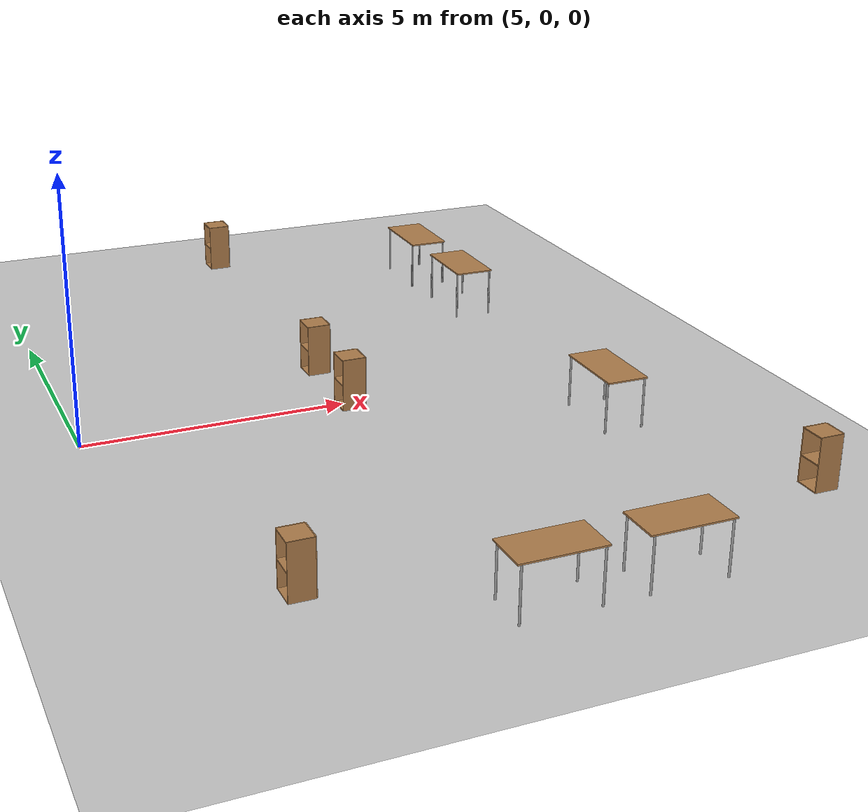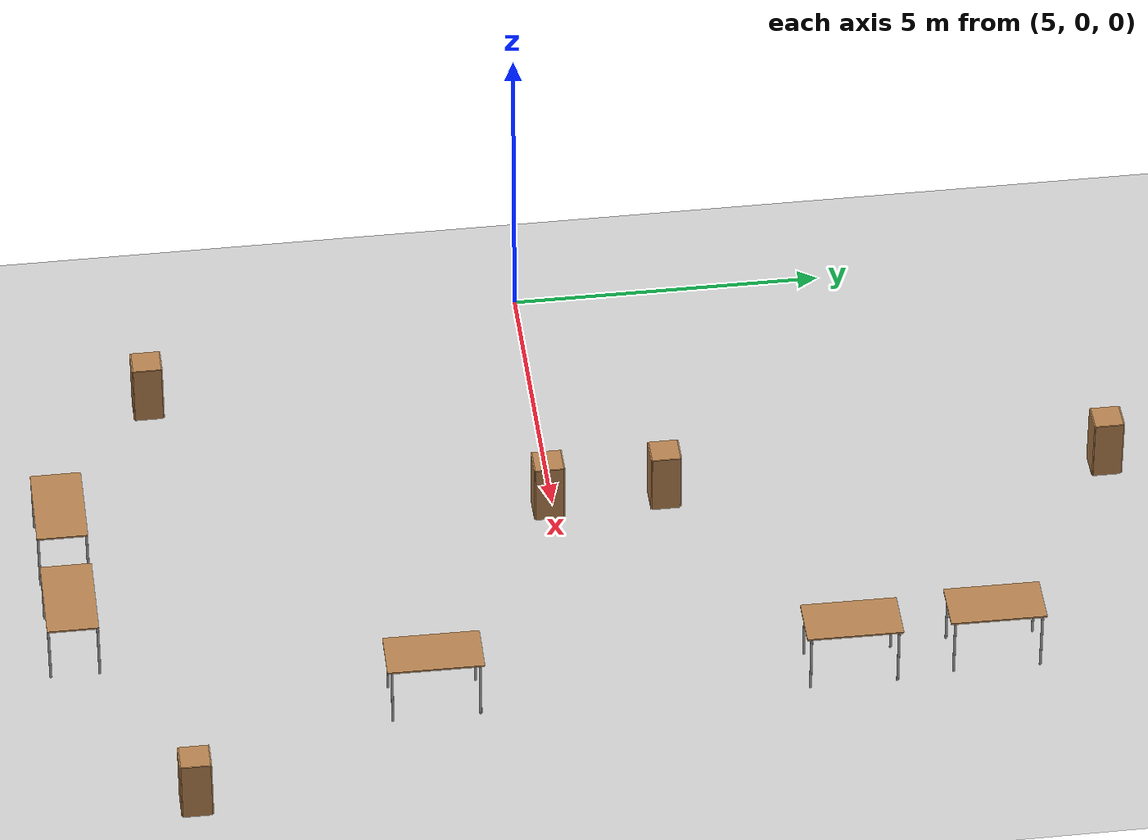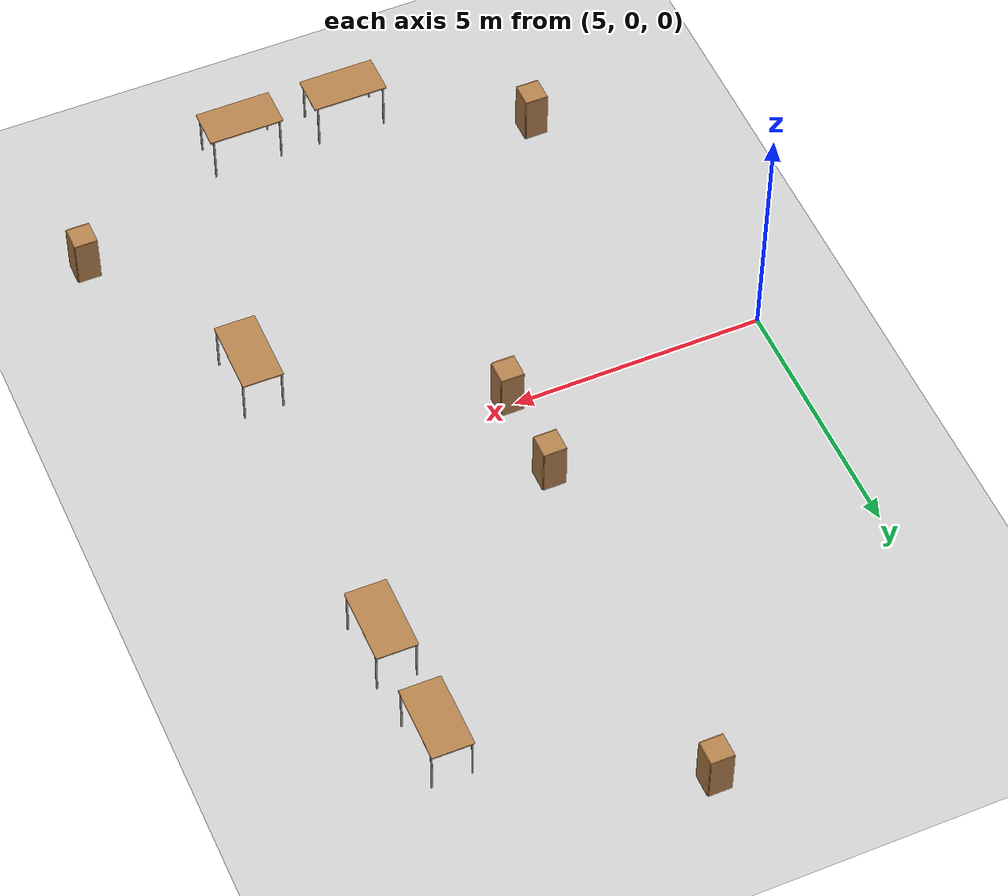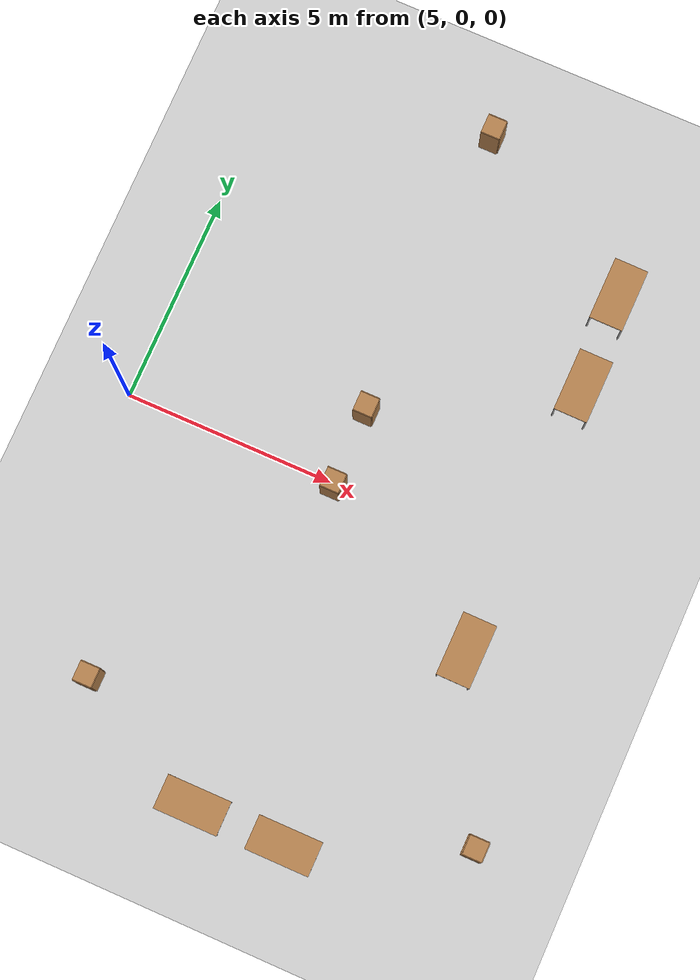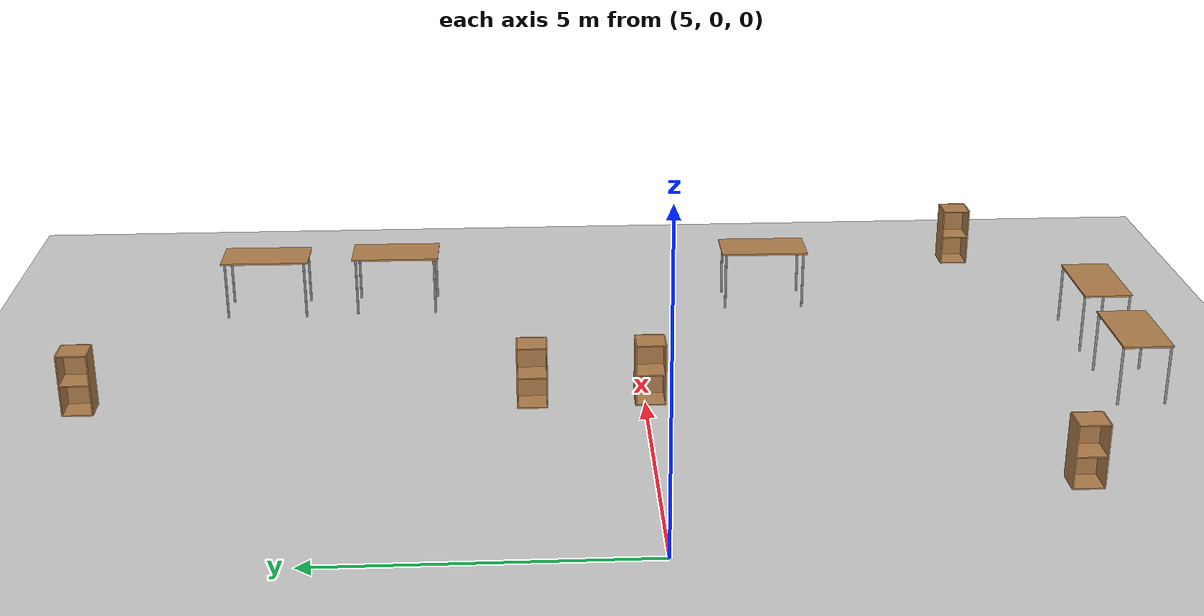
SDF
<sdf version="1.7">
 <world name="default">
  <model name="ground_plane">
   <static>1</static>
   <link name="link">
    <collision name="collision">
     <geometry><plane><normal>0 0 1</normal><size>100 100</size></plane></geometry>
     <surface><friction><ode><mu>100</mu><mu2>50</mu2></ode></friction></surface>
    </collision>
    <visual name="visual">
     <cast_shadows>0</cast_shadows>
     <geometry><plane><normal>0 0 1</normal><size>100 100</size></plane></geometry>
     <material>
      <script><uri>file://media/materials/scripts/gazebo.material</uri><name>Gazebo/Grey</name></script>
     </material>
    </visual>
   </link>
  </model>
  <model name="cabinet_4">
   <static>1</static>
   <link name="cabinet_bottom_plate">
    <inertial>
     <pose>0 0 -1 0 -0 0</pose>
     <inertia><ixx>2.05</ixx><ixy>0</ixy><ixz>0</ixz><iyy>2.05</iyy><iyz>0</iyz><izz>2.05</izz></inertia>
     <mass>25</mass>
    </inertial>
    <collision name="cabinet_bottom_plate_geom">
     <pose>0 0 0.01 0 -0 0</pose>
     <geometry><box><size>0.45 0.45 0.02</size></box></geometry>
    </collision>
    <visual name="cabinet_bottom_plate_geom_visual">
     <pose>0 0 0.01 0 -0 0</pose>
     <geometry><box><size>0.45 0.45 0.02</size></box></geometry>
     <material>
      <script><uri>file://media/materials/scripts/gazebo.material</uri><name>Gazebo/Wood</name></script>
     </material>
    </visual>
    <collision name="cabinet_bottom_plate_geom_cabinet_back_plate">
     <pose>0.235 0 0.51 0 -0 0</pose>
     <geometry><box><size>0.02 0.45 1.02</size></box></geometry>
    </collision>
    <visual name="cabinet_bottom_plate_geom_cabinet_back_plate_visual">
     <pose>0.235 0 0.51 0 -0 0</pose>
     <geometry><box><size>0.02 0.45 1.02</size></box></geometry>
     <material>
      <script><uri>file://media/materials/scripts/gazebo.material</uri><name>Gazebo/Wood</name></script>
     </material>
    </visual>
    <collision name="cabinet_bottom_plate_geom_cabinet_left_plate">
     <pose>0 0.235 0.51 0 -0 0</pose>
     <geometry><box><size>0.45 0.02 1.02</size></box></geometry>
    </collision>
    <visual name="cabinet_bottom_plate_geom_cabinet_left_plate_visual">
     <pose>0 0.235 0.51 0 -0 0</pose>
     <geometry><box><size>0.45 0.02 1.02</size></box></geometry>
     <material>
      <script><uri>file://media/materials/scripts/gazebo.material</uri><name>Gazebo/Wood</name></script>
     </material>
    </visual>
    <collision name="cabinet_bottom_plate_geom_cabinet_middle_plate">
     <pose>0 0 0.51 0 -0 0</pose>
     <geometry><box><size>0.45 0.45 0.02</size></box></geometry>
    </collision>
    <visual name="cabinet_bottom_plate_geom_cabinet_middle_plate_visual">
     <pose>0 0 0.51 0 -0 0</pose>
     <geometry><box><size>0.45 0.45 0.02</size></box></geometry>
     <material>
      <script><uri>file://media/materials/scripts/gazebo.material</uri><name>Gazebo/Wood</name></script>
     </material>
    </visual>
    <collision name="cabinet_bottom_plate_geom_cabinet_right_plate">
     <pose>0 -0.235 0.51 0 -0 0</pose>
     <geometry><box><size>0.45 0.02 1.02</size></box></geometry>
    </collision>
    <visual name="cabinet_bottom_plate_geom_cabinet_right_plate_visual">
     <pose>0 -0.235 0.51 0 -0 0</pose>
     <geometry><box><size>0.45 0.02 1.02</size></box></geometry>
     <material>
      <script><uri>file://media/materials/scripts/gazebo.material</uri><name>Gazebo/Wood</name></script>
     </material>
    </visual>
    <collision name="cabinet_bottom_plate_geom_cabinet_top_plate">
     <pose>0 0 1.01 0 -0 0</pose>
     <geometry><box><size>0.45 0.45 0.02</size></box></geometry>
    </collision>
    <visual name="cabinet_bottom_plate_geom_cabinet_top_plate_visual">
     <pose>0 0 1.01 0 -0 0</pose>
     <geometry><box><size>0.45 0.45 0.02</size></box></geometry>
     <material>
      <script><uri>file://media/materials/scripts/gazebo.material</uri><name>Gazebo/Wood</name></script>
     </material>
    </visual>
   </link>
   <pose>10.1725 8.85996 0 0 -0 0</pose>
  </model>
  <model name="cabinet_5">
   <static>1</static>
   <link name="cabinet_bottom_plate">
    <inertial>
     <pose>0 0 -1 0 -0 0</pose>
     <inertia><ixx>2.05</ixx><ixy>0</ixy><ixz>0</ixz><iyy>2.05</iyy><iyz>0</iyz><izz>2.05</izz></inertia>
     <mass>25</mass>
    </inertial>
    <collision name="cabinet_bottom_plate_geom">
     <pose>0 0 0.01 0 -0 0</pose>
     <geometry><box><size>0.45 0.45 0.02</size></box></geometry>
    </collision>
    <visual name="cabinet_bottom_plate_geom_visual">
     <pose>0 0 0.01 0 -0 0</pose>
     <geometry><box><size>0.45 0.45 0.02</size></box></geometry>
     <material>
      <script><uri>file://media/materials/scripts/gazebo.material</uri><name>Gazebo/Wood</name></script>
     </material>
    </visual>
    <collision name="cabinet_bottom_plate_geom_cabinet_back_plate">
     <pose>0.235 0 0.51 0 -0 0</pose>
     <geometry><box><size>0.02 0.45 1.02</size></box></geometry>
    </collision>
    <visual name="cabinet_bottom_plate_geom_cabinet_back_plate_visual">
     <pose>0.235 0 0.51 0 -0 0</pose>
     <geometry><box><size>0.02 0.45 1.02</size></box></geometry>
     <material>
      <script><uri>file://media/materials/scripts/gazebo.material</uri><name>Gazebo/Wood</name></script>
     </material>
    </visual>
    <collision name="cabinet_bottom_plate_geom_cabinet_left_plate">
     <pose>0 0.235 0.51 0 -0 0</pose>
     <geometry><box><size>0.45 0.02 1.02</size></box></geometry>
    </collision>
    <visual name="cabinet_bottom_plate_geom_cabinet_left_plate_visual">
     <pose>0 0.235 0.51 0 -0 0</pose>
     <geometry><box><size>0.45 0.02 1.02</size></box></geometry>
     <material>
      <script><uri>file://media/materials/scripts/gazebo.material</uri><name>Gazebo/Wood</name></script>
     </material>
    </visual>
    <collision name="cabinet_bottom_plate_geom_cabinet_middle_plate">
     <pose>0 0 0.51 0 -0 0</pose>
     <geometry><box><size>0.45 0.45 0.02</size></box></geometry>
    </collision>
    <visual name="cabinet_bottom_plate_geom_cabinet_middle_plate_visual">
     <pose>0 0 0.51 0 -0 0</pose>
     <geometry><box><size>0.45 0.45 0.02</size></box></geometry>
     <material>
      <script><uri>file://media/materials/scripts/gazebo.material</uri><name>Gazebo/Wood</name></script>
     </material>
    </visual>
    <collision name="cabinet_bottom_plate_geom_cabinet_right_plate">
     <pose>0 -0.235 0.51 0 -0 0</pose>
     <geometry><box><size>0.45 0.02 1.02</size></box></geometry>
    </collision>
    <visual name="cabinet_bottom_plate_geom_cabinet_right_plate_visual">
     <pose>0 -0.235 0.51 0 -0 0</pose>
     <geometry><box><size>0.45 0.02 1.02</size></box></geometry>
     <material>
      <script><uri>file://media/materials/scripts/gazebo.material</uri><name>Gazebo/Wood</name></script>
     </material>
    </visual>
    <collision name="cabinet_bottom_plate_geom_cabinet_top_plate">
     <pose>0 0 1.01 0 -0 0</pose>
     <geometry><box><size>0.45 0.45 0.02</size></box></geometry>
    </collision>
    <visual name="cabinet_bottom_plate_geom_cabinet_top_plate_visual">
     <pose>0 0 1.01 0 -0 0</pose>
     <geometry><box><size>0.45 0.45 0.02</size></box></geometry>
     <material>
      <script><uri>file://media/materials/scripts/gazebo.material</uri><name>Gazebo/Wood</name></script>
     </material>
    </visual>
   </link>
   <pose>10.0989 1.77913 0 0 -0 0</pose>
  </model>
  <model name="cabinet_6">
   <static>1</static>
   <link name="cabinet_bottom_plate">
    <inertial>
     <pose>0 0 -1 0 -0 0</pose>
     <inertia><ixx>2.05</ixx><ixy>0</ixy><ixz>0</ixz><iyy>2.05</iyy><iyz>0</iyz><izz>2.05</izz></inertia>
     <mass>25</mass>
    </inertial>
    <collision name="cabinet_bottom_plate_geom">
     <pose>0 0 0.01 0 -0 0</pose>
     <geometry><box><size>0.45 0.45 0.02</size></box></geometry>
    </collision>
    <visual name="cabinet_bottom_plate_geom_visual">
     <pose>0 0 0.01 0 -0 0</pose>
     <geometry><box><size>0.45 0.45 0.02</size></box></geometry>
     <material>
      <script><uri>file://media/materials/scripts/gazebo.material</uri><name>Gazebo/Wood</name></script>
     </material>
    </visual>
    <collision name="cabinet_bottom_plate_geom_cabinet_back_plate">
     <pose>0.235 0 0.51 0 -0 0</pose>
     <geometry><box><size>0.02 0.45 1.02</size></box></geometry>
    </collision>
    <visual name="cabinet_bottom_plate_geom_cabinet_back_plate_visual">
     <pose>0.235 0 0.51 0 -0 0</pose>
     <geometry><box><size>0.02 0.45 1.02</size></box></geometry>
     <material>
      <script><uri>file://media/materials/scripts/gazebo.material</uri><name>Gazebo/Wood</name></script>
     </material>
    </visual>
    <collision name="cabinet_bottom_plate_geom_cabinet_left_plate">
     <pose>0 0.235 0.51 0 -0 0</pose>
     <geometry><box><size>0.45 0.02 1.02</size></box></geometry>
    </collision>
    <visual name="cabinet_bottom_plate_geom_cabinet_left_plate_visual">
     <pose>0 0.235 0.51 0 -0 0</pose>
     <geometry><box><size>0.45 0.02 1.02</size></box></geometry>
     <material>
      <script><uri>file://media/materials/scripts/gazebo.material</uri><name>Gazebo/Wood</name></script>
     </material>
    </visual>
    <collision name="cabinet_bottom_plate_geom_cabinet_middle_plate">
     <pose>0 0 0.51 0 -0 0</pose>
     <geometry><box><size>0.45 0.45 0.02</size></box></geometry>
    </collision>
    <visual name="cabinet_bottom_plate_geom_cabinet_middle_plate_visual">
     <pose>0 0 0.51 0 -0 0</pose>
     <geometry><box><size>0.45 0.45 0.02</size></box></geometry>
     <material>
      <script><uri>file://media/materials/scripts/gazebo.material</uri><name>Gazebo/Wood</name></script>
     </material>
    </visual>
    <collision name="cabinet_bottom_plate_geom_cabinet_right_plate">
     <pose>0 -0.235 0.51 0 -0 0</pose>
     <geometry><box><size>0.45 0.02 1.02</size></box></geometry>
    </collision>
    <visual name="cabinet_bottom_plate_geom_cabinet_right_plate_visual">
     <pose>0 -0.235 0.51 0 -0 0</pose>
     <geometry><box><size>0.45 0.02 1.02</size></box></geometry>
     <material>
      <script><uri>file://media/materials/scripts/gazebo.material</uri><name>Gazebo/Wood</name></script>
     </material>
    </visual>
    <collision name="cabinet_bottom_plate_geom_cabinet_top_plate">
     <pose>0 0 1.01 0 -0 0</pose>
     <geometry><box><size>0.45 0.45 0.02</size></box></geometry>
    </collision>
    <visual name="cabinet_bottom_plate_geom_cabinet_top_plate_visual">
     <pose>0 0 1.01 0 -0 0</pose>
     <geometry><box><size>0.45 0.45 0.02</size></box></geometry>
     <material>
      <script><uri>file://media/materials/scripts/gazebo.material</uri><name>Gazebo/Wood</name></script>
     </material>
    </visual>
   </link>
   <pose>10.1148 -0.083487 0 0 -0 0</pose>
  </model>
  <model name="cabinet_7">
   <static>1</static>
   <link name="cabinet_bottom_plate">
    <inertial>
     <pose>0 0 -1 0 -0 0</pose>
     <inertia><ixx>2.05</ixx><ixy>0</ixy><ixz>0</ixz><iyy>2.05</iyy><iyz>0</iyz><izz>2.05</izz></inertia>
     <mass>25</mass>
    </inertial>
    <collision name="cabinet_bottom_plate_geom">
     <pose>0 0 0.01 0 -0 0</pose>
     <geometry><box><size>0.45 0.45 0.02</size></box></geometry>
    </collision>
    <visual name="cabinet_bottom_plate_geom_visual">
     <pose>0 0 0.01 0 -0 0</pose>
     <geometry><box><size>0.45 0.45 0.02</size></box></geometry>
     <material>
      <script><uri>file://media/materials/scripts/gazebo.material</uri><name>Gazebo/Wood</name></script>
     </material>
    </visual>
    <collision name="cabinet_bottom_plate_geom_cabinet_back_plate">
     <pose>0.235 0 0.51 0 -0 0</pose>
     <geometry><box><size>0.02 0.45 1.02</size></box></geometry>
    </collision>
    <visual name="cabinet_bottom_plate_geom_cabinet_back_plate_visual">
     <pose>0.235 0 0.51 0 -0 0</pose>
     <geometry><box><size>0.02 0.45 1.02</size></box></geometry>
     <material>
      <script><uri>file://media/materials/scripts/gazebo.material</uri><name>Gazebo/Wood</name></script>
     </material>
    </visual>
    <collision name="cabinet_bottom_plate_geom_cabinet_left_plate">
     <pose>0 0.235 0.51 0 -0 0</pose>
     <geometry><box><size>0.45 0.02 1.02</size></box></geometry>
    </collision>
    <visual name="cabinet_bottom_plate_geom_cabinet_left_plate_visual">
     <pose>0 0.235 0.51 0 -0 0</pose>
     <geometry><box><size>0.45 0.02 1.02</size></box></geometry>
     <material>
      <script><uri>file://media/materials/scripts/gazebo.material</uri><name>Gazebo/Wood</name></script>
     </material>
    </visual>
    <collision name="cabinet_bottom_plate_geom_cabinet_middle_plate">
     <pose>0 0 0.51 0 -0 0</pose>
     <geometry><box><size>0.45 0.45 0.02</size></box></geometry>
    </collision>
    <visual name="cabinet_bottom_plate_geom_cabinet_middle_plate_visual">
     <pose>0 0 0.51 0 -0 0</pose>
     <geometry><box><size>0.45 0.45 0.02</size></box></geometry>
     <material>
      <script><uri>file://media/materials/scripts/gazebo.material</uri><name>Gazebo/Wood</name></script>
     </material>
    </visual>
    <collision name="cabinet_bottom_plate_geom_cabinet_right_plate">
     <pose>0 -0.235 0.51 0 -0 0</pose>
     <geometry><box><size>0.45 0.02 1.02</size></box></geometry>
    </collision>
    <visual name="cabinet_bottom_plate_geom_cabinet_right_plate_visual">
     <pose>0 -0.235 0.51 0 -0 0</pose>
     <geometry><box><size>0.45 0.02 1.02</size></box></geometry>
     <material>
      <script><uri>file://media/materials/scripts/gazebo.material</uri><name>Gazebo/Wood</name></script>
     </material>
    </visual>
    <collision name="cabinet_bottom_plate_geom_cabinet_top_plate">
     <pose>0 0 1.01 0 -0 0</pose>
     <geometry><box><size>0.45 0.45 0.02</size></box></geometry>
    </collision>
    <visual name="cabinet_bottom_plate_geom_cabinet_top_plate_visual">
     <pose>0 0 1.01 0 -0 0</pose>
     <geometry><box><size>0.45 0.45 0.02</size></box></geometry>
     <material>
      <script><uri>file://media/materials/scripts/gazebo.material</uri><name>Gazebo/Wood</name></script>
     </material>
    </visual>
   </link>
   <pose>6.91626 -6.17516 0 0 -0 0</pose>
  </model>
  <model name="cabinet_8">
   <static>1</static>
   <link name="cabinet_bottom_plate">
    <inertial>
     <pose>0 0 -1 0 -0 0</pose>
     <inertia><ixx>2.05</ixx><ixy>0</ixy><ixz>0</ixz><iyy>2.05</iyy><iyz>0</iyz><izz>2.05</izz></inertia>
     <mass>25</mass>
    </inertial>
    <collision name="cabinet_bottom_plate_geom">
     <pose>0 0 0.01 0 -0 0</pose>
     <geometry><box><size>0.45 0.45 0.02</size></box></geometry>
    </collision>
    <visual name="cabinet_bottom_plate_geom_visual">
     <pose>0 0 0.01 0 -0 0</pose>
     <geometry><box><size>0.45 0.45 0.02</size></box></geometry>
     <material>
      <script><uri>file://media/materials/scripts/gazebo.material</uri><name>Gazebo/Wood</name></script>
     </material>
    </visual>
    <collision name="cabinet_bottom_plate_geom_cabinet_back_plate">
     <pose>0.235 0 0.51 0 -0 0</pose>
     <geometry><box><size>0.02 0.45 1.02</size></box></geometry>
    </collision>
    <visual name="cabinet_bottom_plate_geom_cabinet_back_plate_visual">
     <pose>0.235 0 0.51 0 -0 0</pose>
     <geometry><box><size>0.02 0.45 1.02</size></box></geometry>
     <material>
      <script><uri>file://media/materials/scripts/gazebo.material</uri><name>Gazebo/Wood</name></script>
     </material>
    </visual>
    <collision name="cabinet_bottom_plate_geom_cabinet_left_plate">
     <pose>0 0.235 0.51 0 -0 0</pose>
     <geometry><box><size>0.45 0.02 1.02</size></box></geometry>
    </collision>
    <visual name="cabinet_bottom_plate_geom_cabinet_left_plate_visual">
     <pose>0 0.235 0.51 0 -0 0</pose>
     <geometry><box><size>0.45 0.02 1.02</size></box></geometry>
     <material>
      <script><uri>file://media/materials/scripts/gazebo.material</uri><name>Gazebo/Wood</name></script>
     </material>
    </visual>
    <collision name="cabinet_bottom_plate_geom_cabinet_middle_plate">
     <pose>0 0 0.51 0 -0 0</pose>
     <geometry><box><size>0.45 0.45 0.02</size></box></geometry>
    </collision>
    <visual name="cabinet_bottom_plate_geom_cabinet_middle_plate_visual">
     <pose>0 0 0.51 0 -0 0</pose>
     <geometry><box><size>0.45 0.45 0.02</size></box></geometry>
     <material>
      <script><uri>file://media/materials/scripts/gazebo.material</uri><name>Gazebo/Wood</name></script>
     </material>
    </visual>
    <collision name="cabinet_bottom_plate_geom_cabinet_right_plate">
     <pose>0 -0.235 0.51 0 -0 0</pose>
     <geometry><box><size>0.45 0.02 1.02</size></box></geometry>
    </collision>
    <visual name="cabinet_bottom_plate_geom_cabinet_right_plate_visual">
     <pose>0 -0.235 0.51 0 -0 0</pose>
     <geometry><box><size>0.45 0.02 1.02</size></box></geometry>
     <material>
      <script><uri>file://media/materials/scripts/gazebo.material</uri><name>Gazebo/Wood</name></script>
     </material>
    </visual>
    <collision name="cabinet_bottom_plate_geom_cabinet_top_plate">
     <pose>0 0 1.01 0 -0 0</pose>
     <geometry><box><size>0.45 0.45 0.02</size></box></geometry>
    </collision>
    <visual name="cabinet_bottom_plate_geom_cabinet_top_plate_visual">
     <pose>0 0 1.01 0 -0 0</pose>
     <geometry><box><size>0.45 0.45 0.02</size></box></geometry>
     <material>
      <script><uri>file://media/materials/scripts/gazebo.material</uri><name>Gazebo/Wood</name></script>
     </material>
    </visual>
   </link>
   <pose>16.1819 -6.20619 0 0 -0 0</pose>
  </model>
  <model name="table_1_clone_1">
   <static>1</static>
   <link name="link">
    <collision name="surface">
     <pose>0 0 1 0 -0 0</pose>
     <geometry><box><size>1.5 0.8 0.03</size></box></geometry>
     <surface><friction><ode><mu>0.6</mu><mu2>0.6</mu2></ode></friction></surface>
    </collision>
    <visual name="visual1">
     <pose>0 0 1 0 -0 0</pose>
     <geometry><box><size>1.5 0.8 0.03</size></box></geometry>
     <material>
      <script><uri>file://media/materials/scripts/gazebo.material</uri><name>Gazebo/Wood</name></script>
     </material>
    </visual>
    <collision name="front_left_leg">
     <pose>0.68 0.38 0.5 0 -0 0</pose>
     <geometry><cylinder><radius>0.02</radius><length>1</length></cylinder></geometry>
    </collision>
    <visual name="front_left_leg">
     <pose>0.68 0.38 0.5 0 -0 0</pose>
     <geometry><cylinder><radius>0.02</radius><length>1</length></cylinder></geometry>
     <material>
      <script><uri>file://media/materials/scripts/gazebo.material</uri><name>Gazebo/Grey</name></script>
     </material>
    </visual>
    <collision name="front_right_leg">
     <pose>0.68 -0.38 0.5 0 -0 0</pose>
     <geometry><cylinder><radius>0.02</radius><length>1</length></cylinder></geometry>
    </collision>
    <visual name="front_right_leg">
     <pose>0.68 -0.38 0.5 0 -0 0</pose>
     <geometry><cylinder><radius>0.02</radius><length>1</length></cylinder></geometry>
     <material>
      <script><uri>file://media/materials/scripts/gazebo.material</uri><name>Gazebo/Grey</name></script>
     </material>
    </visual>
    <collision name="back_right_leg">
     <pose>-0.68 -0.38 0.5 0 -0 0</pose>
     <geometry><cylinder><radius>0.02</radius><length>1</length></cylinder></geometry>
    </collision>
    <visual name="back_right_leg">
     <pose>-0.68 -0.38 0.5 0 -0 0</pose>
     <geometry><cylinder><radius>0.02</radius><length>1</length></cylinder></geometry>
     <material>
      <script><uri>file://media/materials/scripts/gazebo.material</uri><name>Gazebo/Grey</name></script>
     </material>
    </visual>
    <collision name="back_left_leg">
     <pose>-0.68 0.38 0.5 0 -0 0</pose>
     <geometry><cylinder><radius>0.02</radius><length>1</length></cylinder></geometry>
    </collision>
    <visual name="back_left_leg">
     <pose>-0.68 0.38 0.5 0 -0 0</pose>
     <geometry><cylinder><radius>0.02</radius><length>1</length></cylinder></geometry>
     <material>
      <script><uri>file://media/materials/scripts/gazebo.material</uri><name>Gazebo/Grey</name></script>
     </material>
    </visual>
   </link>
   <pose>14.2862 6.36609 0 0 0 -1.57916</pose>
  </model>
  <model name="table_1_clone_2">
   <static>1</static>
   <link name="link">
    <collision name="surface">
     <pose>0 0 1 0 -0 0</pose>
     <geometry><box><size>1.5 0.8 0.03</size></box></geometry>
     <surface><friction><ode><mu>0.6</mu><mu2>0.6</mu2></ode></friction></surface>
    </collision>
    <visual name="visual1">
     <pose>0 0 1 0 -0 0</pose>
     <geometry><box><size>1.5 0.8 0.03</size></box></geometry>
     <material>
      <script><uri>file://media/materials/scripts/gazebo.material</uri><name>Gazebo/Wood</name></script>
     </material>
    </visual>
    <collision name="front_left_leg">
     <pose>0.68 0.38 0.5 0 -0 0</pose>
     <geometry><cylinder><radius>0.02</radius><length>1</length></cylinder></geometry>
    </collision>
    <visual name="front_left_leg">
     <pose>0.68 0.38 0.5 0 -0 0</pose>
     <geometry><cylinder><radius>0.02</radius><length>1</length></cylinder></geometry>
     <material>
      <script><uri>file://media/materials/scripts/gazebo.material</uri><name>Gazebo/Grey</name></script>
     </material>
    </visual>
    <collision name="front_right_leg">
     <pose>0.68 -0.38 0.5 0 -0 0</pose>
     <geometry><cylinder><radius>0.02</radius><length>1</length></cylinder></geometry>
    </collision>
    <visual name="front_right_leg">
     <pose>0.68 -0.38 0.5 0 -0 0</pose>
     <geometry><cylinder><radius>0.02</radius><length>1</length></cylinder></geometry>
     <material>
      <script><uri>file://media/materials/scripts/gazebo.material</uri><name>Gazebo/Grey</name></script>
     </material>
    </visual>
    <collision name="back_right_leg">
     <pose>-0.68 -0.38 0.5 0 -0 0</pose>
     <geometry><cylinder><radius>0.02</radius><length>1</length></cylinder></geometry>
    </collision>
    <visual name="back_right_leg">
     <pose>-0.68 -0.38 0.5 0 -0 0</pose>
     <geometry><cylinder><radius>0.02</radius><length>1</length></cylinder></geometry>
     <material>
      <script><uri>file://media/materials/scripts/gazebo.material</uri><name>Gazebo/Grey</name></script>
     </material>
    </visual>
    <collision name="back_left_leg">
     <pose>-0.68 0.38 0.5 0 -0 0</pose>
     <geometry><cylinder><radius>0.02</radius><length>1</length></cylinder></geometry>
    </collision>
    <visual name="back_left_leg">
     <pose>-0.68 0.38 0.5 0 -0 0</pose>
     <geometry><cylinder><radius>0.02</radius><length>1</length></cylinder></geometry>
     <material>
      <script><uri>file://media/materials/scripts/gazebo.material</uri><name>Gazebo/Grey</name></script>
     </material>
    </visual>
   </link>
   <pose>14.3698 4.11593 0 0 0 -1.57916</pose>
  </model>
  <model name="table_1_clone_3">
   <static>1</static>
   <link name="link">
    <collision name="surface">
     <pose>0 0 1 0 -0 0</pose>
     <geometry><box><size>1.5 0.8 0.03</size></box></geometry>
     <surface><friction><ode><mu>0.6</mu><mu2>0.6</mu2></ode></friction></surface>
    </collision>
    <visual name="visual1">
     <pose>0 0 1 0 -0 0</pose>
     <geometry><box><size>1.5 0.8 0.03</size></box></geometry>
     <material>
      <script><uri>file://media/materials/scripts/gazebo.material</uri><name>Gazebo/Wood</name></script>
     </material>
    </visual>
    <collision name="front_left_leg">
     <pose>0.68 0.38 0.5 0 -0 0</pose>
     <geometry><cylinder><radius>0.02</radius><length>1</length></cylinder></geometry>
    </collision>
    <visual name="front_left_leg">
     <pose>0.68 0.38 0.5 0 -0 0</pose>
     <geometry><cylinder><radius>0.02</radius><length>1</length></cylinder></geometry>
     <material>
      <script><uri>file://media/materials/scripts/gazebo.material</uri><name>Gazebo/Grey</name></script>
     </material>
    </visual>
    <collision name="front_right_leg">
     <pose>0.68 -0.38 0.5 0 -0 0</pose>
     <geometry><cylinder><radius>0.02</radius><length>1</length></cylinder></geometry>
    </collision>
    <visual name="front_right_leg">
     <pose>0.68 -0.38 0.5 0 -0 0</pose>
     <geometry><cylinder><radius>0.02</radius><length>1</length></cylinder></geometry>
     <material>
      <script><uri>file://media/materials/scripts/gazebo.material</uri><name>Gazebo/Grey</name></script>
     </material>
    </visual>
    <collision name="back_right_leg">
     <pose>-0.68 -0.38 0.5 0 -0 0</pose>
     <geometry><cylinder><radius>0.02</radius><length>1</length></cylinder></geometry>
    </collision>
    <visual name="back_right_leg">
     <pose>-0.68 -0.38 0.5 0 -0 0</pose>
     <geometry><cylinder><radius>0.02</radius><length>1</length></cylinder></geometry>
     <material>
      <script><uri>file://media/materials/scripts/gazebo.material</uri><name>Gazebo/Grey</name></script>
     </material>
    </visual>
    <collision name="back_left_leg">
     <pose>-0.68 0.38 0.5 0 -0 0</pose>
     <geometry><cylinder><radius>0.02</radius><length>1</length></cylinder></geometry>
    </collision>
    <visual name="back_left_leg">
     <pose>-0.68 0.38 0.5 0 -0 0</pose>
     <geometry><cylinder><radius>0.02</radius><length>1</length></cylinder></geometry>
     <material>
      <script><uri>file://media/materials/scripts/gazebo.material</uri><name>Gazebo/Grey</name></script>
     </material>
    </visual>
   </link>
   <pose>14.3119 -2.36446 0 0 0 -1.57916</pose>
  </model>
  <model name="table_0_clone">
   <static>1</static>
   <link name="link">
    <collision name="surface">
     <pose>0 0 1 0 -0 0</pose>
     <geometry><box><size>1.5 0.8 0.03</size></box></geometry>
     <surface><friction><ode><mu>0.6</mu><mu2>0.6</mu2></ode></friction></surface>
    </collision>
    <visual name="visual1">
     <pose>0 0 1 0 -0 0</pose>
     <geometry><box><size>1.5 0.8 0.03</size></box></geometry>
     <material>
      <script><uri>file://media/materials/scripts/gazebo.material</uri><name>Gazebo/Wood</name></script>
     </material>
    </visual>
    <collision name="front_left_leg">
     <pose>0.68 0.38 0.5 0 -0 0</pose>
     <geometry><cylinder><radius>0.02</radius><length>1</length></cylinder></geometry>
    </collision>
    <visual name="front_left_leg">
     <pose>0.68 0.38 0.5 0 -0 0</pose>
     <geometry><cylinder><radius>0.02</radius><length>1</length></cylinder></geometry>
     <material>
      <script><uri>file://media/materials/scripts/gazebo.material</uri><name>Gazebo/Grey</name></script>
     </material>
    </visual>
    <collision name="front_right_leg">
     <pose>0.68 -0.38 0.5 0 -0 0</pose>
     <geometry><cylinder><radius>0.02</radius><length>1</length></cylinder></geometry>
    </collision>
    <visual name="front_right_leg">
     <pose>0.68 -0.38 0.5 0 -0 0</pose>
     <geometry><cylinder><radius>0.02</radius><length>1</length></cylinder></geometry>
     <material>
      <script><uri>file://media/materials/scripts/gazebo.material</uri><name>Gazebo/Grey</name></script>
     </material>
    </visual>
    <collision name="back_right_leg">
     <pose>-0.68 -0.38 0.5 0 -0 0</pose>
     <geometry><cylinder><radius>0.02</radius><length>1</length></cylinder></geometry>
    </collision>
    <visual name="back_right_leg">
     <pose>-0.68 -0.38 0.5 0 -0 0</pose>
     <geometry><cylinder><radius>0.02</radius><length>1</length></cylinder></geometry>
     <material>
      <script><uri>file://media/materials/scripts/gazebo.material</uri><name>Gazebo/Grey</name></script>
     </material>
    </visual>
    <collision name="back_left_leg">
     <pose>-0.68 0.38 0.5 0 -0 0</pose>
     <geometry><cylinder><radius>0.02</radius><length>1</length></cylinder></geometry>
    </collision>
    <visual name="back_left_leg">
     <pose>-0.68 0.38 0.5 0 -0 0</pose>
     <geometry><cylinder><radius>0.02</radius><length>1</length></cylinder></geometry>
     <material>
      <script><uri>file://media/materials/scripts/gazebo.material</uri><name>Gazebo/Grey</name></script>
     </material>
    </visual>
   </link>
   <pose>10.2144 -7.81465 0 0 -0 0</pose>
  </model>
  <model name="table_0_clone_0">
   <static>1</static>
   <link name="link">
    <collision name="surface">
     <pose>0 0 1 0 -0 0</pose>
     <geometry><box><size>1.5 0.8 0.03</size></box></geometry>
     <surface><friction><ode><mu>0.6</mu><mu2>0.6</mu2></ode></friction></surface>
    </collision>
    <visual name="visual1">
     <pose>0 0 1 0 -0 0</pose>
     <geometry><box><size>1.5 0.8 0.03</size></box></geometry>
     <material>
      <script><uri>file://media/materials/scripts/gazebo.material</uri><name>Gazebo/Wood</name></script>
     </material>
    </visual>
    <collision name="front_left_leg">
     <pose>0.68 0.38 0.5 0 -0 0</pose>
     <geometry><cylinder><radius>0.02</radius><length>1</length></cylinder></geometry>
    </collision>
    <visual name="front_left_leg">
     <pose>0.68 0.38 0.5 0 -0 0</pose>
     <geometry><cylinder><radius>0.02</radius><length>1</length></cylinder></geometry>
     <material>
      <script><uri>file://media/materials/scripts/gazebo.material</uri><name>Gazebo/Grey</name></script>
     </material>
    </visual>
    <collision name="front_right_leg">
     <pose>0.68 -0.38 0.5 0 -0 0</pose>
     <geometry><cylinder><radius>0.02</radius><length>1</length></cylinder></geometry>
    </collision>
    <visual name="front_right_leg">
     <pose>0.68 -0.38 0.5 0 -0 0</pose>
     <geometry><cylinder><radius>0.02</radius><length>1</length></cylinder></geometry>
     <material>
      <script><uri>file://media/materials/scripts/gazebo.material</uri><name>Gazebo/Grey</name></script>
     </material>
    </visual>
    <collision name="back_right_leg">
     <pose>-0.68 -0.38 0.5 0 -0 0</pose>
     <geometry><cylinder><radius>0.02</radius><length>1</length></cylinder></geometry>
    </collision>
    <visual name="back_right_leg">
     <pose>-0.68 -0.38 0.5 0 -0 0</pose>
     <geometry><cylinder><radius>0.02</radius><length>1</length></cylinder></geometry>
     <material>
      <script><uri>file://media/materials/scripts/gazebo.material</uri><name>Gazebo/Grey</name></script>
     </material>
    </visual>
    <collision name="back_left_leg">
     <pose>-0.68 0.38 0.5 0 -0 0</pose>
     <geometry><cylinder><radius>0.02</radius><length>1</length></cylinder></geometry>
    </collision>
    <visual name="back_left_leg">
     <pose>-0.68 0.38 0.5 0 -0 0</pose>
     <geometry><cylinder><radius>0.02</radius><length>1</length></cylinder></geometry>
     <material>
      <script><uri>file://media/materials/scripts/gazebo.material</uri><name>Gazebo/Grey</name></script>
     </material>
    </visual>
   </link>
   <pose>12.3724 -7.81086 0 0 -0 0</pose>
  </model>
 </world>
</sdf>
